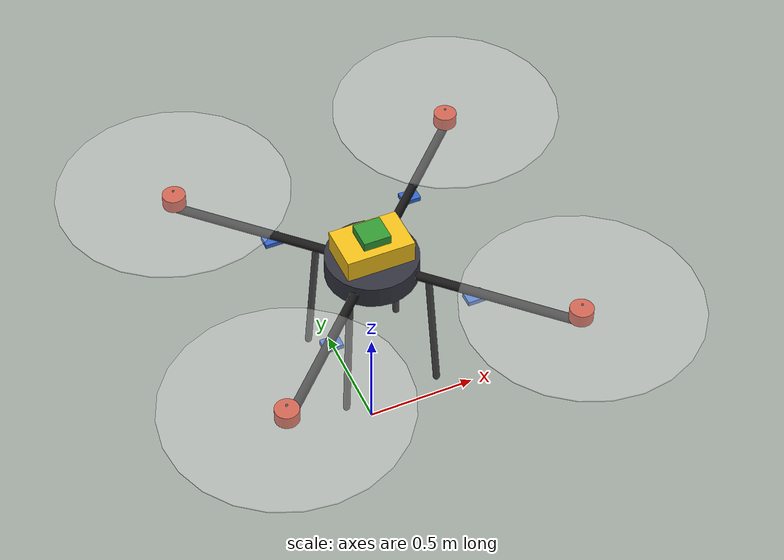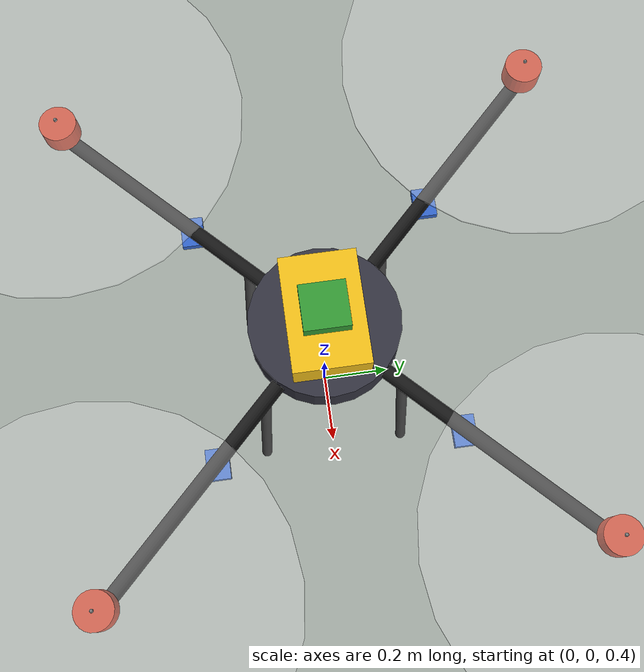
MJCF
<mujoco model="fixture_quad">
  <!-- Drone de test du simulateur ; fixture des tests, jamais fourni à l'agent. Conforme à l'épreuve v2. -->
  <worldbody>
    <body name="drone" pos="0 0 1">
      <freejoint/>
      <geom name="hub" type="cylinder" size="0.2 0.05" mass="4" rgba=".2 .2 .25 1"/>
      <geom name="battery" type="box" size="0.15 0.1 0.05" pos="0 0 0.1" mass="6" rgba=".95 .75 .1 1"/>
      <geom name="avionics" type="box" size="0.06 0.06 0.02" pos="0 0 0.17" mass="0.45" rgba=".2 .6 .2 1"/>
      <geom name="wiring" type="box" size="0.1 0.1 0.005" pos="0 0 -0.06" mass="0.35" rgba=".5 .3 .1 1"/>
      <geom name="arm_0" type="capsule" fromto="0 0 0 0.6364 0.6364 0" size="0.02" mass="0.6" rgba=".1 .1 .1 1"/>
      <geom name="motor_0" type="cylinder" pos="0.6364 0.6364 0.05" size="0.05 0.03" mass="1.0" rgba=".8 .2 .1 1"/>
      <geom name="esc_0" type="box" pos="0.3182 0.3182 -0.03" size="0.04 0.03 0.01" mass="0.25" rgba=".2 .4 .8 1"/>
      <geom name="prop_0" type="cylinder" pos="0.6364 0.6364 0.1" size="0.5 0.003" mass="0.26" contype="0" conaffinity="0" rgba=".9 .9 .9 .3"/>
      <site name="rotor_0" pos="0.6364 0.6364 0.1"/>
      <geom name="leg_0" type="capsule" fromto="0.1768 0.1768 0 0.2121 0.2121 -0.6" size="0.015" mass="0.3" rgba=".3 .3 .3 1"/>
      <geom name="arm_1" type="capsule" fromto="0 0 0 -0.6364 0.6364 0" size="0.02" mass="0.6" rgba=".1 .1 .1 1"/>
      <geom name="motor_1" type="cylinder" pos="-0.6364 0.6364 0.05" size="0.05 0.03" mass="1.0" rgba=".8 .2 .1 1"/>
      <geom name="esc_1" type="box" pos="-0.3182 0.3182 -0.03" size="0.04 0.03 0.01" mass="0.25" rgba=".2 .4 .8 1"/>
      <geom name="prop_1" type="cylinder" pos="-0.6364 0.6364 0.1" size="0.5 0.003" mass="0.26" contype="0" conaffinity="0" rgba=".9 .9 .9 .3"/>
      <site name="rotor_1" pos="-0.6364 0.6364 0.1"/>
      <geom name="leg_1" type="capsule" fromto="-0.1768 0.1768 0 -0.2121 0.2121 -0.6" size="0.015" mass="0.3" rgba=".3 .3 .3 1"/>
      <geom name="arm_2" type="capsule" fromto="0 0 0 -0.6364 -0.6364 0" size="0.02" mass="0.6" rgba=".1 .1 .1 1"/>
      <geom name="motor_2" type="cylinder" pos="-0.6364 -0.6364 0.05" size="0.05 0.03" mass="1.0" rgba=".8 .2 .1 1"/>
      <geom name="esc_2" type="box" pos="-0.3182 -0.3182 -0.03" size="0.04 0.03 0.01" mass="0.25" rgba=".2 .4 .8 1"/>
      <geom name="prop_2" type="cylinder" pos="-0.6364 -0.6364 0.1" size="0.5 0.003" mass="0.26" contype="0" conaffinity="0" rgba=".9 .9 .9 .3"/>
      <site name="rotor_2" pos="-0.6364 -0.6364 0.1"/>
      <geom name="leg_2" type="capsule" fromto="-0.1768 -0.1768 0 -0.2121 -0.2121 -0.6" size="0.015" mass="0.3" rgba=".3 .3 .3 1"/>
      <geom name="arm_3" type="capsule" fromto="0 0 0 0.6364 -0.6364 0" size="0.02" mass="0.6" rgba=".1 .1 .1 1"/>
      <geom name="motor_3" type="cylinder" pos="0.6364 -0.6364 0.05" size="0.05 0.03" mass="1.0" rgba=".8 .2 .1 1"/>
      <geom name="esc_3" type="box" pos="0.3182 -0.3182 -0.03" size="0.04 0.03 0.01" mass="0.25" rgba=".2 .4 .8 1"/>
      <geom name="prop_3" type="cylinder" pos="0.6364 -0.6364 0.1" size="0.5 0.003" mass="0.26" contype="0" conaffinity="0" rgba=".9 .9 .9 .3"/>
      <site name="rotor_3" pos="0.6364 -0.6364 0.1"/>
      <geom name="leg_3" type="capsule" fromto="0.1768 -0.1768 0 0.2121 -0.2121 -0.6" size="0.015" mass="0.3" rgba=".3 .3 .3 1"/>
      <site name="payload_attach" pos="0 0 -0.1"/>
    </body>
  </worldbody>
</mujoco>
